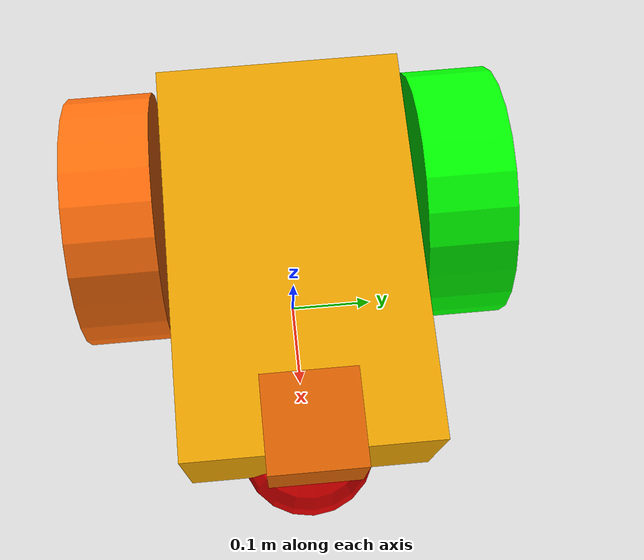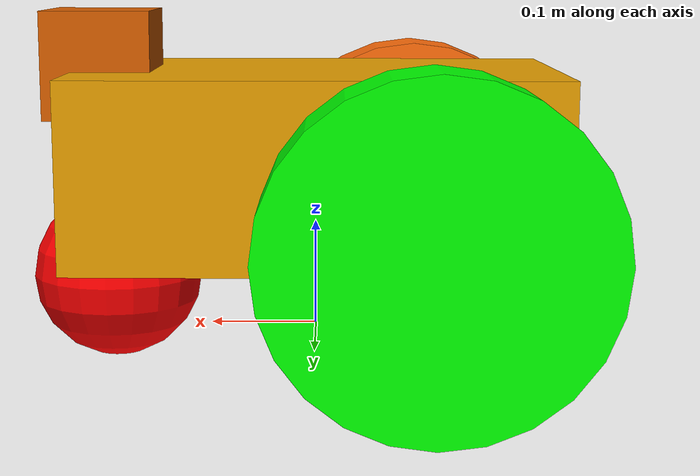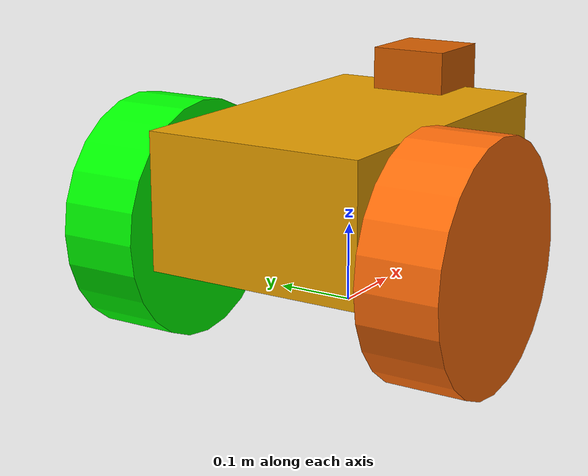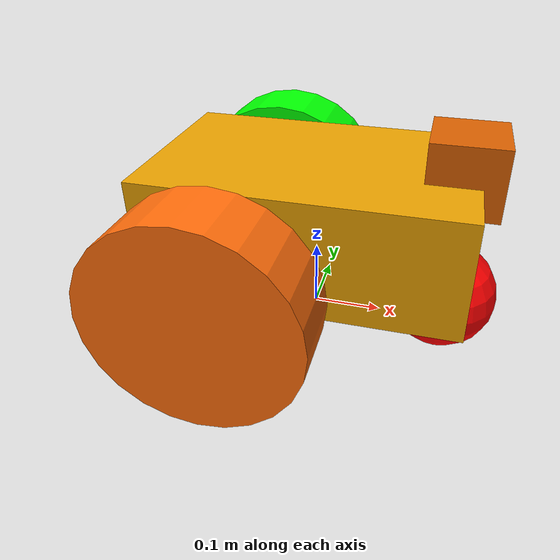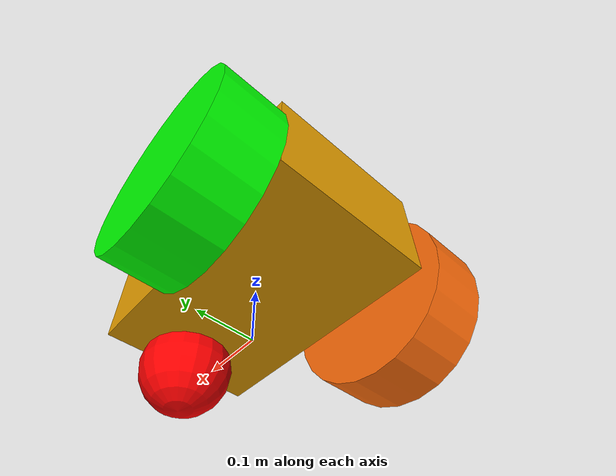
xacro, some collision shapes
<?xml version="1.0"?>
<robot xmlns:xacro="http://ros.org/wiki/xacro" name="pioneer_robot">

  <!-- Chassis -->
  <link name="chassis">
  <visual>
    <origin xyz="0 0 0.16" rpy="0 0 0"/>
    <geometry>
      <mesh filename="package://pioneer_description/models/pioneer2dx/meshes/chassis.dae" scale="1 1 1"/>
    </geometry>
  </visual>

  <collision>
    <origin xyz="0 0 0.16" rpy="0 0 0"/>
    <geometry>
      <box size="0.445 0.277 0.17"/>
    </geometry>
  </collision>

  <inertial>
    <origin xyz="0 0 0.08" rpy="0 0 0"/>
    <mass value="5.67"/>
    <inertia ixx="0.07" ixy="0.0" ixz="0.0" iyy="0.08" iyz="0.0" izz="0.10"/>
  </inertial>
  </link>

  <!-- Front wheel yaw -->
  <link name="front_wheel_yaw">
    <inertial>
      <origin xyz="0 0 0" rpy="0 0 0"/>
      <mass value="0.1"/>
      <inertia ixx="0.001" ixy="0.0" ixz="0.0" iyy="0.001" iyz="0.0" izz="0.001"/>
    </inertial>
  </link>

  <!-- Front wheel -->
<link name="front_wheel">
  <visual>
    <origin xyz="0 0 0" rpy="0 0 0"/>
    <geometry>
      <sphere radius="0.08"/>
    </geometry>
    <material name="Red">
      <color rgba="1 0 0 1"/>
    </material>
  </visual>
  <collision>
    <origin xyz="0 0 0" rpy="0 0 0"/>
    <geometry>
      <sphere radius="0.08"/>
    </geometry>
    <surface>
      <friction>
        <ode>
          <mu>50.0</mu>       <!-- сила трения вдоль движения -->
          <mu2>50.0</mu2>     <!-- сила трения поперёк движения -->
        </ode>
      </friction>
    </surface>
  </collision>
  <inertial>
    <mass value="1.0"/>
    <inertia ixx="0.002" iyy="0.002" izz="0.004" ixy="0" ixz="0" iyz="0"/>
  </inertial>
</link>

<!-- Left wheel -->
<link name="left_wheel">
  <visual>
    <origin xyz="0 0 0" rpy="0 0 0"/>
    <geometry>
      <cylinder radius="0.15" length="0.1"/>
    </geometry>
    <material name="Green">
      <color rgba="0 1 0 1"/>
    </material>
  </visual>
  <collision>
    <origin xyz="0 0 0" rpy="0 0 0"/>
    <geometry>
      <cylinder radius="0.15" length="0.1"/>
    </geometry>
    <surface>
      <friction>
        <ode>
          <mu>50.0</mu>       <!-- сила трения вдоль движения -->
          <mu2>50.0</mu2>     <!-- сила трения поперёк движения -->
        </ode>
      </friction>
    </surface>
  </collision>
  <inertial>
    <mass value="1.5"/>
    <inertia ixx="0.1" iyy="0.1" izz="0.1" ixy="0" ixz="0" iyz="0"/>
  </inertial>
</link>

<!-- Right wheel -->
<link name="right_wheel">
  <visual>
    <origin xyz="0 0 0" rpy="0 0 0"/>
    <geometry>
      <cylinder radius="0.15" length="0.1"/>
    </geometry>
    <material name="Blue">
      <color rgba="${255/255} ${108/255} ${10/255} 1.0"/>
    </material>
  </visual>
  <collision>
    <origin xyz="0 0 0" rpy="0 0 0"/>
    <geometry>
      <cylinder radius="0.15" length="0.1"/>
    </geometry>
    <surface>
      <friction>
        <ode>
          <mu>50.0</mu>       <!-- сила трения вдоль движения -->
          <mu2>50.0</mu2>     <!-- сила трения поперёк движения -->
        </ode>
      </friction>
    </surface>
  </collision>
  <inertial>
    <mass value="1.5"/>
    <inertia ixx="0.1" iyy="0.1" izz="0.1" ixy="0" ixz="0" iyz="0"/>
  </inertial>
</link>

  <!-- Camera -->
  <link name="camera_link">
    <visual>
      <geometry>
        <box size="0.1 0.1 0.1"/>
      </geometry>
    </visual>
    <inertial>
      <origin xyz="0 0 0" rpy="0 0 0"/>
      <mass value="0.1"/>
      <inertia ixx="0.0001" ixy="0.0" ixz="0.0" iyy="0.0001" iyz="0.0" izz="0.0001"/>
    </inertial>
  </link>

  <!-- IMU -->
  <link name="imu_link">
    <visual>
      <geometry>
        <box size="0.01 0.01 0.01"/>
      </geometry>
      <material name="Black"/>
    </visual>
    <inertial>
      <origin xyz="0 0 0" rpy="0 0 0"/>
      <mass value="0.01"/>
      <inertia ixx="1e-6" ixy="0.0" ixz="0.0" iyy="1e-6" iyz="0.0" izz="1e-6"/>
    </inertial>
  </link>

  <!-- Joints -->
  <joint name="left_wheel_hinge" type="revolute">
    <parent link="chassis"/>
    <child link="left_wheel"/>
    <origin xyz="-0.1 0.2 0.11" rpy="0 1.5707 1.5707"/>
    <axis xyz="0 0 1"/>
    <limit effort="10.0" velocity="10.0" lower="-1000" upper="1000"/>
  </joint>

  <joint name="right_wheel_hinge" type="revolute">
    <parent link="chassis"/>
    <child link="right_wheel"/>
    <origin xyz="-0.1 -0.2 0.11" rpy="0 1.5707 1.5707"/>
    <axis xyz="0 0 1"/>
    <limit effort="10.0" velocity="10.0" lower="-1000" upper="1000"/>
  </joint>

  <joint name="front_yaw_joint" type="revolute">
    <parent link="chassis"/>
    <child link="front_wheel_yaw"/>
    <origin xyz="0.19 0 0.05" rpy="0 0 0"/>
    <axis xyz="0 0 1"/>
    <limit lower="-0.785" upper="0.785" effort="5.0" velocity="1.0"/>
  </joint>

  <joint name="front_wheel_spin" type="continuous">
    <parent link="front_wheel_yaw"/>
    <child link="front_wheel"/>
    <origin xyz="0 0 0" rpy="0 0 0"/>
    <axis xyz="0 1 0"/>
  </joint>

  <joint name="camera_joint" type="fixed">
    <parent link="chassis"/>
    <child link="camera_link"/>
    <origin xyz="0.2 0 0.25" rpy="0 0 0"/>
  </joint>

  <joint name="imu_joint" type="fixed">
    <parent link="chassis"/>
    <child link="imu_link"/>
    <origin xyz="0 0 0.2" rpy="0 0 0"/>
  </joint>

  <!-- Transmissions (ROS-control) -->
  <transmission name="left_wheel_trans">
    <type>transmission_interface/SimpleTransmission</type>
    <joint name="left_wheel_hinge">
      <hardwareInterface>EffortJointInterface</hardwareInterface>
    </joint>
    <actuator name="left_motor"/>
  </transmission>

  <transmission name="right_wheel_trans">
    <type>transmission_interface/SimpleTransmission</type>
    <joint name="right_wheel_hinge">
      <hardwareInterface>EffortJointInterface</hardwareInterface>
    </joint>
    <actuator name="right_motor"/>
  </transmission>

  <transmission name="front_yaw_trans">
    <type>transmission_interface/SimpleTransmission</type>
    <joint name="front_yaw_joint">
      <hardwareInterface>EffortJointInterface</hardwareInterface>
    </joint>
    <actuator name="front_yaw_motor"/>
  </transmission>

  <!-- Plugin for gazebo_ros_control -->
  <gazebo>
    <plugin name="gazebo_ros_control" filename="libgazebo_ros_control.so"/>
  </gazebo>
</robot>
